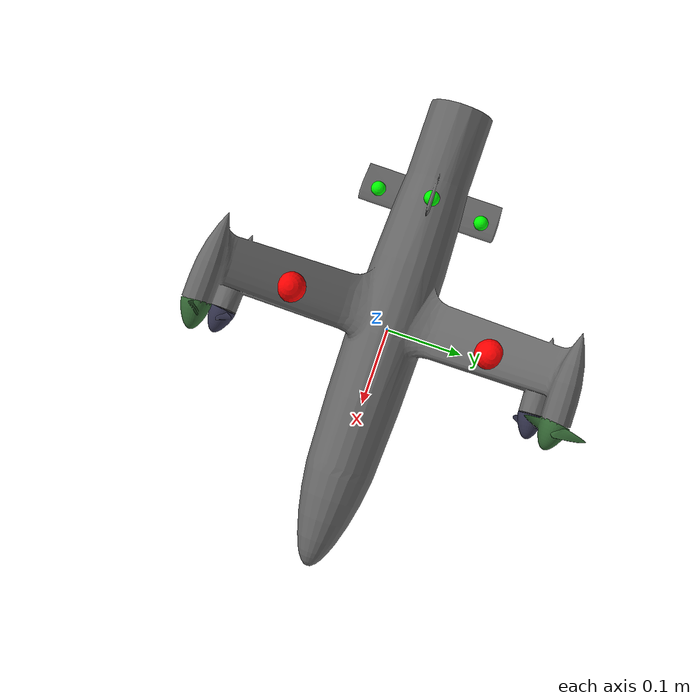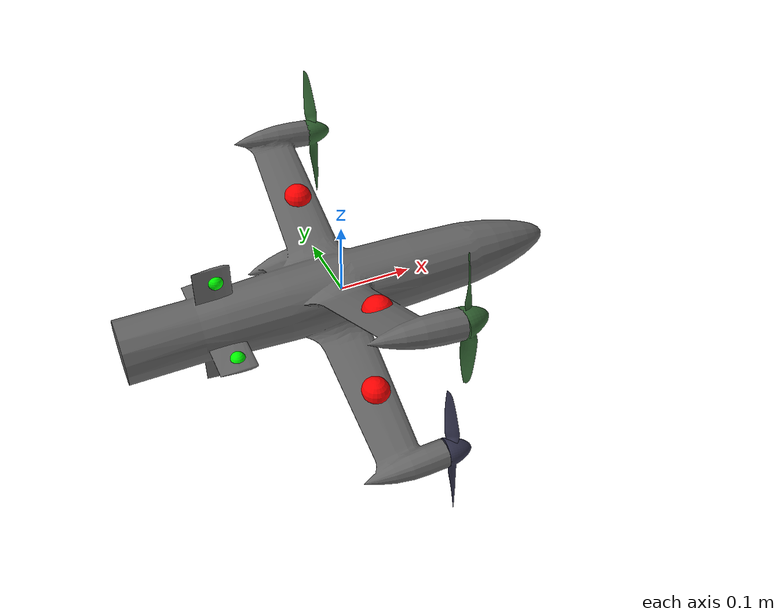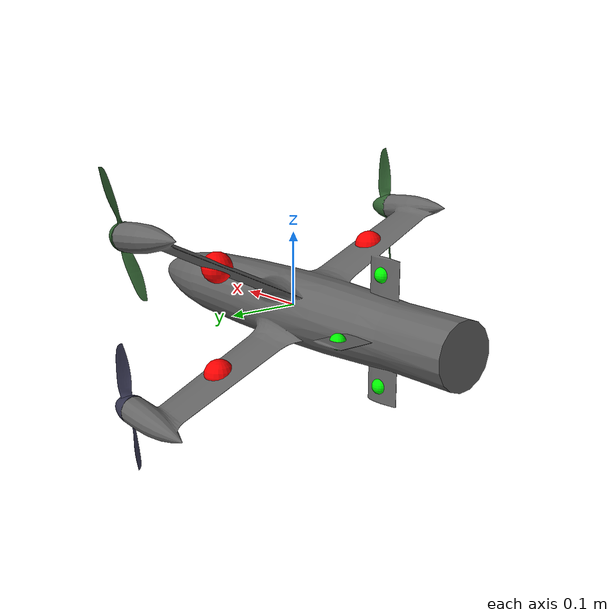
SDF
<?xml version="1.0"?>
<sdf version="1.7">
  <model name="waterdrop">
    <pose>0 0 0 0 0 0</pose>
    <static>0</static>

    <link name="base_link">
      <pose degrees="true">0 0 0 0 0 0</pose>
      <!-- \todo provide proper inertial : actual mass 1.75 kg -->
      <inertial>
        <pose>0 0 0 0 0 0</pose>
        <mass>0.5</mass>
        <inertia>
          <ixx>0.01</ixx>
          <ixy>0</ixy>
          <ixz>0</ixz>
          <iyy>0.01625</iyy>
          <iyz>0</iyz>
          <izz>0.01625</izz>
        </inertia>
      </inertial>
      <collision name="collision">
        <geometry>
          <mesh>
            <uri>model://waterdrop/meshes/base_link.STL</uri>
          </mesh>
        </geometry>
      </collision>
      <visual name="fuselage_visual">
        <geometry>
          <mesh>
            <uri>model://waterdrop/meshes/base_link.STL</uri>
          </mesh>
        </geometry>
        <material>
          <ambient>0.4 0.4 0.4</ambient>
          <diffuse>0.4 0.4 0.4</diffuse>
          <specular>0.3 0.3 0.3 1</specular>
        </material>
      </visual>

      <visual name="cp_wing_1">
        <pose>-0.01 -0.13 -0.07 0 0 0</pose>
        <geometry>
          <sphere>
            <radius>0.02</radius>
          </sphere>
        </geometry>
        <material>
          <ambient>1 0 0</ambient>
          <diffuse>1 0 0</diffuse>
          <specular>0.1 0.1 0.1 1</specular>
        </material>
      </visual>
      <visual name="cp_wing_2">
        <pose>-0.01 0.13 0.07 0 0 0</pose>
        <geometry>
          <sphere>
            <radius>0.02</radius>
          </sphere>
        </geometry>
        <material>
          <ambient>1 0 0</ambient>
          <diffuse>1 0 0</diffuse>
          <specular>0.1 0.1 0.1 1</specular>
        </material>
      </visual>
      <visual name="cp_wing_3">
        <pose>-0.01 0.13 -0.07 0 0 0</pose>
        <geometry>
          <sphere>
            <radius>0.02</radius>
          </sphere>
        </geometry>
        <material>
          <ambient>1 0 0</ambient>
          <diffuse>1 0 0</diffuse>
          <specular>0.1 0.1 0.1 1</specular>
        </material>
      </visual>
      <visual name="cp_wing_4">
        <pose>-0.01 -0.13 0.07 0 0 0</pose>
        <geometry>
          <sphere>
            <radius>0.02</radius>
          </sphere>
        </geometry>
        <material>
          <ambient>1 0 0</ambient>
          <diffuse>1 0 0</diffuse>
          <specular>0.1 0.1 0.1 1</specular>
        </material>
      </visual>
      <visual name="cp_vertail_1">
        <pose>-0.17 -0.07 0 0 0 0</pose>
        <geometry>
          <sphere>
            <radius>0.01</radius>
          </sphere>
        </geometry>
        <material>
          <ambient>0 1 0</ambient>
          <diffuse>0 1 0</diffuse>
          <specular>0.1 0.1 0.1 1</specular>
        </material>
      </visual>
      <visual name="cp_vertail_2">
        <pose>-0.17 0.07 0 0 0 0</pose>
        <geometry>
          <sphere>
            <radius>0.01</radius>
          </sphere>
        </geometry>
        <material>
          <ambient>0 1 0</ambient>
          <diffuse>0 1 0</diffuse>
          <specular>0.1 0.1 0.1 1</specular>
        </material>
      </visual>
      <visual name="cp_vertail_3">
        <pose>-0.17 0 -0.07 0 0 0</pose>
        <geometry>
          <sphere>
            <radius>0.01</radius>
          </sphere>
        </geometry>
        <material>
          <ambient>0 1 0</ambient>
          <diffuse>0 1 0</diffuse>
          <specular>0.1 0.1 0.1 1</specular>
        </material>
      </visual>
      <visual name="cp_vertail_4">
        <pose>-0.17 0 0.07 0 0 0</pose>
        <geometry>
          <sphere>
            <radius>0.01</radius>
          </sphere>
        </geometry>
        <material>
          <ambient>0 1 0</ambient>
          <diffuse>0 1 0</diffuse>
          <specular>0.1 0.1 0.1 1</specular>
        </material>
      </visual>

      <collision name="leg1_collision">
        <pose>-0.26 -0.25 -0.16 0 0 0</pose>
        <geometry>
          <sphere>
            <radius>0.01</radius>
          </sphere>
        </geometry>
      </collision>
      <collision name="leg2_collision">
        <pose>-0.26 0.25 0.16 0 0 0</pose>
        <geometry>
          <sphere>
            <radius>0.01</radius>
          </sphere>
        </geometry>
      </collision>
      <collision name="leg3_collision">
        <pose>-0.26 0.25 -0.16 0 0 0</pose>
        <geometry>
          <sphere>
            <radius>0.01</radius>
          </sphere>
        </geometry>
      </collision>
      <collision name="leg4_collision">
        <pose>-0.26 -0.25 0.16 0 0 0</pose>
        <geometry>
          <sphere>
            <radius>0.01</radius>
          </sphere>
        </geometry>
      </collision>
    </link>

    <!-- CCW -->
    <joint name='motor1_joint' type='revolute'>
      <pose relative_to="base_link" degrees="true">0.042836 -0.22635 -0.11141 0 90 0</pose>
      <child>motor1_link</child>
      <parent>base_link</parent>
      <axis>
        <xyz>0 0 1</xyz>
        <limit>
          <lower>-1e+16</lower>
          <upper>1e+16</upper>
        </limit>
        <dynamics>
          <damping>0.04</damping>
        </dynamics>
      </axis>
    </joint>
    <link name="motor1_link">
      <pose relative_to="motor1_joint">0 0 0 0 0 0</pose>
      <inertial>
        <pose>0 0 0 0 0 0</pose>
        <mass>0.025</mass>
        <inertia>
          <ixx>0.000130417</ixx>
          <ixy>0</ixy>
          <ixz>0</ixz>
          <iyy>0.000130417</iyy>
          <iyz>0</iyz>
          <izz>0.000260417</izz>
        </inertia>
      </inertial>
      <collision name='link_1_collision'>
        <pose>0 0 0 0 0 0</pose>
        <geometry>
          <mesh>
            <scale>1 1 1</scale>
            <uri>model://waterdrop/meshes/ccw_rotor.STL</uri>
          </mesh>
        </geometry>
      </collision>
      <visual name='link_1_visual'>
        <pose>0 0 0 0 0 0</pose>
        <geometry>
          <mesh>
            <scale>1 1 1</scale>
            <uri>model://waterdrop/meshes/ccw_rotor.STL</uri>
          </mesh>
        </geometry>
        <material>
          <ambient>0.2 0.2 0.3</ambient>
          <diffuse>0.2 0.2 0.3</diffuse>
          <specular>0.1 0.1 0.1 1</specular>
        </material>
      </visual>
    </link>

    <!-- CCW -->
    <joint name='motor2_joint' type='revolute'>
      <pose relative_to="base_link" degrees="true">0.042836 0.22635 0.11141 0 90 0</pose>
      <child>motor2_link</child>
      <parent>base_link</parent>
      <axis>
        <xyz>0 0 1</xyz>
        <limit>
          <lower>-1e+16</lower>
          <upper>1e+16</upper>
        </limit>
        <dynamics>
          <damping>0.04</damping>
        </dynamics>
      </axis>
    </joint>
    <link name="motor2_link">
      <pose relative_to="motor2_joint">0 0 0 0 0 0</pose>
      <inertial>
        <pose>0 0 0 0 0 0</pose>
        <mass>0.025</mass>
        <inertia>
          <ixx>0.000130417</ixx>
          <ixy>0</ixy>
          <ixz>0</ixz>
          <iyy>0.000130417</iyy>
          <iyz>0</iyz>
          <izz>0.000260417</izz>
        </inertia>
      </inertial>
      <collision name='link_2_collision'>
        <pose degrees="true">0 0 0 0 0 0</pose>
        <geometry>
          <mesh>
            <scale>1 1 1</scale>
            <uri>model://waterdrop/meshes/ccw_rotor.STL</uri>
          </mesh>
        </geometry>
      </collision>
      <visual name='link_2_visual'>
        <pose degrees="true">0 0 0 0 0 0</pose>
        <geometry>
          <mesh>
            <scale>1 1 1</scale>
            <uri>model://waterdrop/meshes/ccw_rotor.STL</uri>
          </mesh>
        </geometry>
        <material>
          <ambient>0.2 0.4 0.2</ambient>
          <diffuse>0.2 0.4 0.2</diffuse>
          <specular>0.1 0.1 0.1 1</specular>
        </material>
      </visual>
    </link>

    <!-- CW -->
    <joint name='motor3_joint' type='revolute'>
      <pose relative_to="base_link" degrees="true">0.042836 0.22635 -0.11141 0 90 0</pose>
      <child>motor3_link</child>
      <parent>base_link</parent>
      <axis>
        <xyz>0 0 1</xyz>
        <limit>
          <lower>-1e+16</lower>
          <upper>1e+16</upper>
        </limit>
        <dynamics>
          <damping>0.04</damping>
        </dynamics>
      </axis>
    </joint>
    <link name="motor3_link">
      <pose relative_to="motor3_joint">0 0 0 0 0 0</pose>
      <inertial>
        <pose>0 0 0 0 0 0</pose>
        <mass>0.025</mass>
        <inertia>
          <ixx>0.000130417</ixx>
          <ixy>0</ixy>
          <ixz>0</ixz>
          <iyy>0.000130417</iyy>
          <iyz>0</iyz>
          <izz>0.000260417</izz>
        </inertia>
      </inertial>
      <collision name='link_3_collision'>
        <pose degrees="true">0 0 0 0 180 0</pose>
        <geometry>
          <mesh>
            <scale>1 1 1</scale>
            <uri>model://waterdrop/meshes/cw_rotor.STL</uri>
          </mesh>
        </geometry>
      </collision>
      <visual name='link_3_visual'>
        <pose degrees="true">0 0 0 0 180 0</pose>
        <geometry>
          <mesh>
            <scale>1 1 1</scale>
            <uri>model://waterdrop/meshes/cw_rotor.STL</uri>
          </mesh>
        </geometry>
        <material>
          <ambient>0.2 0.2 0.3</ambient>
          <diffuse>0.2 0.2 0.3</diffuse>
          <specular>0.1 0.1 0.1 1</specular>
        </material>
      </visual>
    </link>

    <!-- CW -->
    <joint name='motor4_joint' type='revolute'>
      <pose relative_to="base_link" degrees="true">0.042836 -0.22635 0.11141 0 90 0</pose>
      <child>motor4_link</child>
      <parent>base_link</parent>
      <axis>
        <xyz>0 0 1</xyz>
        <limit>
          <lower>-1e+16</lower>
          <upper>1e+16</upper>
        </limit>
        <dynamics>
          <damping>0.04</damping>
        </dynamics>
      </axis>
    </joint>
    <link name="motor4_link">
      <pose relative_to="motor4_joint">0 0 0 0 0 0</pose>
      <inertial>
        <pose>0 0 0 0 0 0</pose>
        <mass>0.025</mass>
        <inertia>
          <ixx>0.000130417</ixx>
          <ixy>0</ixy>
          <ixz>0</ixz>
          <iyy>0.000130417</iyy>
          <iyz>0</iyz>
          <izz>0.000260417</izz>
        </inertia>
      </inertial>
      <collision name='link_4_collision'>
        <pose degrees="true">0 0 0 0 180 0</pose>
        <geometry>
          <mesh>
            <scale>1 1 1</scale>
            <uri>model://waterdrop/meshes/cw_rotor.STL</uri>
          </mesh>
        </geometry>
      </collision>
      <visual name='link_4_visual'>
        <pose degrees="true">0 0 0 0 180 0</pose>
        <geometry>
          <mesh>
            <scale>1 1 1</scale>
            <uri>model://waterdrop/meshes/cw_rotor.STL</uri>
          </mesh>
        </geometry>
        <material>
          <ambient>0.2 0.4 0.2</ambient>
          <diffuse>0.2 0.4 0.2</diffuse>
          <specular>0.1 0.1 0.1 1</specular>
        </material>
      </visual>
    </link>

    <!-- sensors -->
    <link name='imu_link'>
      <inertial>
        <pose>0 0 0 0 0 0</pose>
        <mass>0.15</mass>
        <inertia>
          <ixx>0.00002</ixx>
          <ixy>0</ixy>
          <ixz>0</ixz>
          <iyy>0.00002</iyy>
          <iyz>0</iyz>
          <izz>0.00002</izz>
        </inertia>
      </inertial>
      <sensor name="imu_sensor" type="imu">
        <pose degrees="true">0 0 0 180 0 0</pose>
        <always_on>1</always_on>
        <update_rate>1000.0</update_rate>
      </sensor>
    </link>
    <joint name='imu_joint' type='fixed'>
      <child>imu_link</child>
      <parent>base_link</parent>
      <axis>
        <xyz>0 0 1</xyz>
      </axis>
    </joint>

    <!-- plugins -->
    <plugin filename="gz-sim-joint-state-publisher-system"
      name="gz::sim::systems::JointStatePublisher">
    </plugin>
    <plugin filename="gz-sim-apply-joint-force-system"
      name="gz::sim::systems::ApplyJointForce">
      <joint_name>motor1_joint</joint_name>
    </plugin>
    <plugin filename="gz-sim-apply-joint-force-system"
      name="gz::sim::systems::ApplyJointForce">
      <joint_name>motor2_joint</joint_name>
    </plugin>
    <plugin filename="gz-sim-apply-joint-force-system"
      name="gz::sim::systems::ApplyJointForce">
      <joint_name>motor3_joint</joint_name>
    </plugin>
    <plugin filename="gz-sim-apply-joint-force-system"
      name="gz::sim::systems::ApplyJointForce">
      <joint_name>motor4_joint</joint_name>
    </plugin>

    <!-- prop1 (ccw) lift-drag -->
    <plugin filename="gz-sim-lift-drag-system"
        name="gz::sim::systems::LiftDrag">
      <a0>0.3</a0>
      <alpha_stall>1.4</alpha_stall>
      <cla>4.2500</cla>
      <cda>0.10</cda>
      <cma>0.0</cma>
      <cla_stall>-0.025</cla_stall>
      <cda_stall>0.0</cda_stall>
      <cma_stall>0.0</cma_stall>
      <area>0.002</area>
      <air_density>1.2041</air_density>
      <cp>0.084 0 0</cp>
      <forward>0 1 0</forward>
      <upward>0 0 1</upward>
      <link_name>motor1_link</link_name>
    </plugin>
    <plugin filename="gz-sim-lift-drag-system"
        name="gz::sim::systems::LiftDrag">
      <a0>0.3</a0>
      <alpha_stall>1.4</alpha_stall>
      <cla>4.2500</cla>
      <cda>0.10</cda>
      <cma>0.0</cma>
      <cla_stall>-0.025</cla_stall>
      <cda_stall>0.0</cda_stall>
      <cma_stall>0.0</cma_stall>
      <area>0.002</area>
      <air_density>1.2041</air_density>
      <cp>-0.084 0 0</cp>
      <forward>0 -1 0</forward>
      <upward>0 0 1</upward>
      <link_name>motor1_link</link_name>
    </plugin>

    <!-- prop2 (ccw) lift-drag -->
    <plugin filename="gz-sim-lift-drag-system"
        name="gz::sim::systems::LiftDrag">
      <a0>0.3</a0>
      <alpha_stall>1.4</alpha_stall>
      <cla>4.2500</cla>
      <cda>0.10</cda>
      <cma>0.0</cma>
      <cla_stall>-0.025</cla_stall>
      <cda_stall>0.0</cda_stall>
      <cma_stall>0.0</cma_stall>
      <area>0.002</area>
      <air_density>1.2041</air_density>
      <cp>0.084 0 0</cp>
      <forward>0 1 0</forward>
      <upward>0 0 1</upward>
      <link_name>motor2_link</link_name>
    </plugin>
    <plugin filename="gz-sim-lift-drag-system"
        name="gz::sim::systems::LiftDrag">
      <a0>0.3</a0>
      <alpha_stall>1.4</alpha_stall>
      <cla>4.2500</cla>
      <cda>0.10</cda>
      <cma>0.0</cma>
      <cla_stall>-0.025</cla_stall>
      <cda_stall>0.0</cda_stall>
      <cma_stall>0.0</cma_stall>
      <area>0.002</area>
      <air_density>1.2041</air_density>
      <cp>-0.084 0 0</cp>
      <forward>0 -1 0</forward>
      <upward>0 0 1</upward>
      <link_name>motor2_link</link_name>
    </plugin>

    <!-- prop3 (cw) lift-drag -->
    <plugin filename="gz-sim-lift-drag-system"
        name="gz::sim::systems::LiftDrag">
      <a0>0.3</a0>
      <alpha_stall>1.4</alpha_stall>
      <cla>4.2500</cla>
      <cda>0.10</cda>
      <cma>0.0</cma>
      <cla_stall>-0.025</cla_stall>
      <cda_stall>0.0</cda_stall>
      <cma_stall>0.0</cma_stall>
      <area>0.002</area>
      <air_density>1.2041</air_density>
      <cp>0.084 0 0</cp>
      <forward>0 -1 0</forward>
      <upward>0 0 1</upward>
      <link_name>motor3_link</link_name>
    </plugin>
    <plugin filename="gz-sim-lift-drag-system"
        name="gz::sim::systems::LiftDrag">
      <a0>0.3</a0>
      <alpha_stall>1.4</alpha_stall>
      <cla>4.2500</cla>
      <cda>0.10</cda>
      <cma>0.0</cma>
      <cla_stall>-0.025</cla_stall>
      <cda_stall>0.0</cda_stall>
      <cma_stall>0.0</cma_stall>
      <area>0.002</area>
      <air_density>1.2041</air_density>
      <cp>-0.084 0 0</cp>
      <forward>0 1 0</forward>
      <upward>0 0 1</upward>
      <link_name>motor3_link</link_name>
    </plugin>

    <!-- prop4 (cw) lift-drag -->
    <plugin filename="gz-sim-lift-drag-system"
        name="gz::sim::systems::LiftDrag">
      <a0>0.3</a0>
      <alpha_stall>1.4</alpha_stall>
      <cla>4.2500</cla>
      <cda>0.10</cda>
      <cma>0.0</cma>
      <cla_stall>-0.025</cla_stall>
      <cda_stall>0.0</cda_stall>
      <cma_stall>0.0</cma_stall>
      <area>0.002</area>
      <air_density>1.2041</air_density>
      <cp>0.084 0 0</cp>
      <forward>0 -1 0</forward>
      <upward>0 0 1</upward>
      <link_name>motor4_link</link_name>
    </plugin>
    <plugin filename="gz-sim-lift-drag-system"
        name="gz::sim::systems::LiftDrag">
      <a0>0.3</a0>
      <alpha_stall>1.4</alpha_stall>
      <cla>4.2500</cla>
      <cda>0.10</cda>
      <cma>0.0</cma>
      <cla_stall>-0.025</cla_stall>
      <cda_stall>0.0</cda_stall>
      <cma_stall>0.0</cma_stall>
      <area>0.002</area>
      <air_density>1.2041</air_density>
      <cp>-0.084 0 0</cp>
      <forward>0 1 0</forward>
      <upward>0 0 1</upward>
      <link_name>motor4_link</link_name>
    </plugin>

    <!-- wing_1 lift and drag -->
    <plugin filename="gz-sim-lift-drag-system"
        name="gz::sim::systems::LiftDrag">
      <a0>0.0</a0>
      <cla>4.752798721</cla>
      <cda>0.6417112299</cda>
      <cma>0.0</cma>
      <alpha_stall>0.3391428111</alpha_stall>
      <cla_stall>-3.85</cla_stall>
      <cda_stall>-0.9233984055</cda_stall>
      <cma_stall>0.0</cma_stall>
      <cp>-0.01 -0.13 -0.07</cp>  <!--change from -0.19 1.46 0.15-->
      <area>0.0155</area>         <!--change from 0.0152-->
      <air_density>1.2041</air_density>
      <forward>1 0 0</forward>
      <upward>0 0.4226 -0.9063</upward>      <!--change from 0 1 0-->
      <link_name>base_link</link_name>
    </plugin>
    <!-- wing_2 lift and drag -->
    <plugin filename="gz-sim-lift-drag-system"
        name="gz::sim::systems::LiftDrag">
      <a0>0.0</a0>
      <cla>4.752798721</cla>
      <cda>0.6417112299</cda>
      <cma>0.0</cma>
      <alpha_stall>0.3391428111</alpha_stall>
      <cla_stall>-3.85</cla_stall>
      <cda_stall>-0.9233984055</cda_stall>
      <cma_stall>0.0</cma_stall>
      <cp>-0.01 0.13 0.07</cp>
      <area>0.0155</area>
      <air_density>1.2041</air_density>
      <forward>1 0 0</forward>
      <upward>0 0.4226 -0.9063</upward>
      <link_name>base_link</link_name>
    </plugin>
    <!-- wing_3 lift and drag -->
    <plugin filename="gz-sim-lift-drag-system"
        name="gz::sim::systems::LiftDrag">
      <a0>0.0</a0>
      <cla>4.752798721</cla>
      <cda>0.6417112299</cda>
      <cma>0.0</cma>
      <alpha_stall>0.3391428111</alpha_stall>
      <cla_stall>-3.85</cla_stall>
      <cda_stall>-0.9233984055</cda_stall>
      <cma_stall>0.0</cma_stall>
      <cp>-0.01 0.13 -0.07</cp>
      <area>0.0155</area>
      <air_density>1.2041</air_density>
      <forward>1 0 0</forward>
      <upward>0 -0.4226 -0.9063</upward>
      <link_name>base_link</link_name>
    </plugin>
    <!-- wing_4 lift and drag -->
    <plugin filename="gz-sim-lift-drag-system"
        name="gz::sim::systems::LiftDrag">
      <a0>0.0</a0>
      <cla>4.752798721</cla>
      <cda>0.6417112299</cda>
      <cma>0.0</cma>
      <alpha_stall>0.3391428111</alpha_stall>
      <cla_stall>-3.85</cla_stall>
      <cda_stall>-0.9233984055</cda_stall>
      <cma_stall>0.0</cma_stall>
      <cp>-0.01 -0.13 0.07</cp>
      <area>0.0155</area>
      <air_density>1.2041</air_density>
      <forward>1 0 0</forward>
      <upward>0 -0.4226 -0.9063</upward>
      <link_name>base_link</link_name>
    </plugin>

    <plugin name="ArduPilotPlugin" filename="ArduPilotPlugin">
      <fdm_addr>127.0.0.1</fdm_addr>
      <fdm_port_in>9002</fdm_port_in>
      <connectionTimeoutMaxCount>5</connectionTimeoutMaxCount>
      <lock_step>1</lock_step>
      <modelXYZToAirplaneXForwardZDown degrees="true">0 0 0 180 0 0</modelXYZToAirplaneXForwardZDown>
      <gazeboXYZToNED degrees="true">0 0 0 180 0 90</gazeboXYZToNED>
      <imuName>imu_sensor</imuName>
      <!--
          SERVO1_FUNCTION   33 (Motor1 Front Right CCW)
          SERVO1_MAX        2000
          SERVO1_MIN        1000
          SERVO1_REVERSED   0
          SERVO1_TRIM       1500
       -->
      <control channel="0">
        <jointName>motor1_joint</jointName>
        <useForce>1</useForce>
        <multiplier>1000</multiplier>
        <offset>0</offset>
        <servo_min>1000</servo_min>
        <servo_max>2000</servo_max>
        <type>VELOCITY</type>
        <p_gain>0.20</p_gain>
        <i_gain>0</i_gain>
        <d_gain>0</d_gain>
        <i_max>0</i_max>
        <i_min>0</i_min>
        <cmd_max>5.0</cmd_max>
        <cmd_min>-5.0</cmd_min>
      </control>

      <!--
          SERVO2_FUNCTION   34 (Motor2 Back Left CCW)
          SERVO2_MAX        2000
          SERVO2_MIN        1000
          SERVO2_REVERSED   0
          SERVO2_TRIM       1500
       -->
      <control channel="1">
        <jointName>motor2_joint</jointName>
        <useForce>1</useForce>
        <multiplier>1000</multiplier>
        <offset>0</offset>
        <servo_min>1000</servo_min>
        <servo_max>2000</servo_max>
        <type>VELOCITY</type>
        <p_gain>0.20</p_gain>
        <i_gain>0</i_gain>
        <d_gain>0</d_gain>
        <i_max>0</i_max>
        <i_min>0</i_min>
        <cmd_max>5.0</cmd_max>
        <cmd_min>-5.0</cmd_min>
      </control>

      <!--
          SERVO3_FUNCTION   35 (Motor3 Front Left CW)
          SERVO3_MAX        2000
          SERVO3_MIN        1000
          SERVO3_REVERSED   0
          SERVO3_TRIM       1500
       -->
      <control channel="2">
        <jointName>motor3_joint</jointName>
        <useForce>1</useForce>
        <multiplier>-1000</multiplier>
        <offset>0</offset>
        <servo_min>1000</servo_min>
        <servo_max>2000</servo_max>
        <type>VELOCITY</type>
        <p_gain>0.20</p_gain>
        <i_gain>0</i_gain>
        <d_gain>0</d_gain>
        <i_max>0</i_max>
        <i_min>0</i_min>
        <cmd_max>5.0</cmd_max>
        <cmd_min>-5.0</cmd_min>
      </control>

      <!--
          SERVO4_FUNCTION   36 (Motor4 Back Right CW)
          SERVO4_MAX        2000
          SERVO4_MIN        1000
          SERVO4_REVERSED   0
          SERVO4_TRIM       1500
       -->
      <control channel="3">
        <jointName>motor4_joint</jointName>
        <useForce>1</useForce>
        <multiplier>-1000</multiplier>
        <offset>0</offset>
        <servo_min>1000</servo_min>
        <servo_max>2000</servo_max>
        <type>VELOCITY</type>
        <p_gain>0.20</p_gain>
        <i_gain>0</i_gain>
        <d_gain>0</d_gain>
        <i_max>0</i_max>
        <i_min>0</i_min>
        <cmd_max>5.0</cmd_max>
        <cmd_min>-5.0</cmd_min>
      </control>
    </plugin>
  </model>
</sdf>
